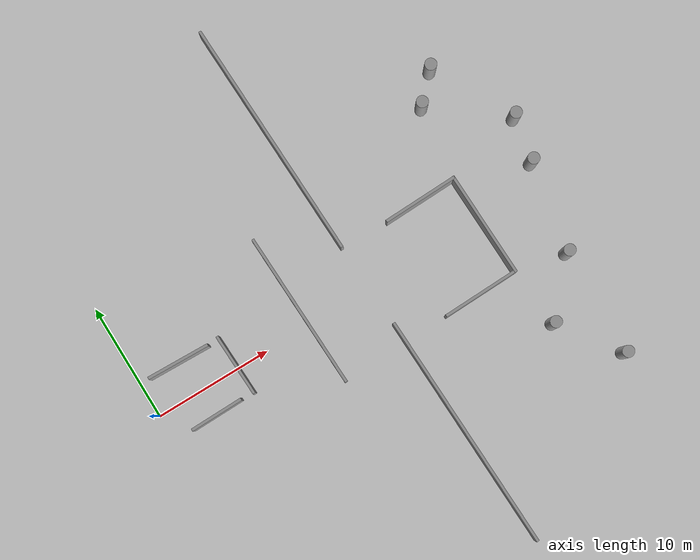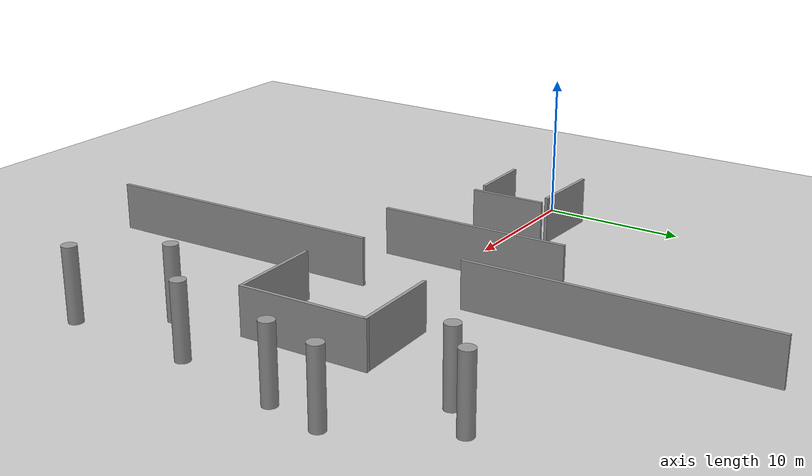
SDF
<sdf version="1.6">
 <world name="default">
  <model name="ground_plane">
   <static>1</static>
   <link name="link">
    <collision name="collision">
     <geometry><plane><normal>0 0 1</normal><size>200 200</size></plane></geometry>
     <surface><friction><ode><mu>100</mu><mu2>50</mu2></ode></friction></surface>
    </collision>
    <visual name="visual">
     <cast_shadows>0</cast_shadows>
     <geometry><plane><normal>0 0 1</normal><size>200 200</size></plane></geometry>
     <material>
      <script><uri>file://media/materials/scripts/gazebo.material</uri><name>Gazebo/Grey</name></script>
     </material>
    </visual>
    <gravity>0</gravity>
   </link>
  </model>
  <model name="unit_box_0_0_clone">
   <pose>3.63656 2.81065 1.66658 0.000226 9e-06 -1.60347</pose>
   <link name="link">
    <inertial>
     <mass>1</mass>
     <inertia>
      <ixx>0.166667</ixx>
      <ixy>0</ixy>
      <ixz>0</ixz>
      <iyy>0.166667</iyy>
      <iyz>0</iyz>
      <izz>0.166667</izz>
     </inertia>
    </inertial>
    <collision name="collision">
     <geometry><box><size>0.237691 5.35848 3.33454</size></box></geometry>
     <surface><contact><collide_without_contact>1</collide_without_contact></contact></surface>
    </collision>
    <visual name="visual">
     <geometry><box><size>0.237691 5.35848 3.33454</size></box></geometry>
     <material>
      <script><name>Gazebo/Grey</name><uri>file://media/materials/scripts/gazebo.material</uri></script>
     </material>
    </visual>
    <gravity>0</gravity>
   </link>
  </model>
  <model name="unit_box_0_0_clone_clone">
   <pose>4.05987 -2.32559 1.66712 6.7e-05 -3e-06 -1.55426</pose>
   <link name="link">
    <inertial>
     <mass>1</mass>
     <inertia>
      <ixx>0.166667</ixx>
      <ixy>0</ixy>
      <ixz>0</ixz>
      <iyy>0.166667</iyy>
      <iyz>0</iyz>
      <izz>0.166667</izz>
     </inertia>
    </inertial>
    <collision name="collision">
     <geometry><box><size>0.237691 4.56821 3.33454</size></box></geometry>
     <surface><contact><collide_without_contact>1</collide_without_contact></contact></surface>
    </collision>
    <visual name="visual">
     <geometry><box><size>0.237691 4.56821 3.33454</size></box></geometry>
     <material>
      <script><name>Gazebo/Grey</name><uri>file://media/materials/scripts/gazebo.material</uri></script>
     </material>
    </visual>
    <gravity>0</gravity>
   </link>
  </model>
  <model name="unit_box_0_0_clone_0">
   <pose>13.8624 1.26709 1.66667 -0.000226 9e-06 0.034068</pose>
   <link name="link">
    <inertial>
     <mass>1</mass>
     <inertia>
      <ixx>0.166667</ixx>
      <ixy>0</ixy>
      <ixz>0</ixz>
      <iyy>0.166667</iyy>
      <iyz>0</iyz>
      <izz>0.166667</izz>
     </inertia>
    </inertial>
    <collision name="collision">
     <geometry><box><size>0.237691 13.4329 3.33454</size></box></geometry>
     <surface><contact><collide_without_contact>1</collide_without_contact></contact></surface>
    </collision>
    <visual name="visual">
     <geometry><box><size>0.237691 13.4329 3.33454</size></box></geometry>
     <material>
      <script><name>Gazebo/Grey</name><uri>file://media/materials/scripts/gazebo.material</uri></script>
     </material>
    </visual>
    <gravity>0</gravity>
   </link>
  </model>
  <model name="unit_cylinder_0_clone">
   <pose>35.7138 1.81409 1.99265 0 -0 0.001048</pose>
   <link name="link">
    <inertial>
     <mass>1</mass>
     <inertia><ixx>0.145833</ixx><ixy>0</ixy><ixz>0</ixz><iyy>0.145833</iyy><iyz>0</iyz><izz>0.125</izz></inertia>
    </inertial>
    <collision name="collision">
     <geometry><cylinder><radius>0.5</radius><length>6.03342</length></cylinder></geometry>
     <surface><contact><collide_without_contact>1</collide_without_contact></contact></surface>
    </collision>
    <visual name="visual">
     <geometry><cylinder><radius>0.5</radius><length>6.03342</length></cylinder></geometry>
     <material>
      <script><name>Gazebo/Grey</name><uri>file://media/materials/scripts/gazebo.material</uri></script>
     </material>
    </visual>
    <gravity>0</gravity>
   </link>
  </model>
  <model name="unit_cylinder_0_clone_0">
   <pose>34.333 -5.78751 1.99265 0 -0 0.00102</pose>
   <link name="link">
    <inertial>
     <mass>1</mass>
     <inertia><ixx>0.145833</ixx><ixy>0</ixy><ixz>0</ixz><iyy>0.145833</iyy><iyz>0</iyz><izz>0.125</izz></inertia>
    </inertial>
    <collision name="collision">
     <geometry><cylinder><radius>0.5</radius><length>6.03342</length></cylinder></geometry>
     <surface><contact><collide_without_contact>1</collide_without_contact></contact></surface>
    </collision>
    <visual name="visual">
     <geometry><cylinder><radius>0.5</radius><length>6.03342</length></cylinder></geometry>
     <material>
      <script><name>Gazebo/Grey</name><uri>file://media/materials/scripts/gazebo.material</uri></script>
     </material>
    </visual>
    <gravity>0</gravity>
   </link>
  </model>
  <model name="unit_cylinder_0_clone_1">
   <pose>36.4256 5.60163 1.99265 0 -0 0.001071</pose>
   <link name="link">
    <inertial>
     <mass>1</mass>
     <inertia><ixx>0.145833</ixx><ixy>0</ixy><ixz>0</ixz><iyy>0.145833</iyy><iyz>0</iyz><izz>0.125</izz></inertia>
    </inertial>
    <collision name="collision">
     <geometry><cylinder><radius>0.5</radius><length>6.03342</length></cylinder></geometry>
     <surface><contact><collide_without_contact>1</collide_without_contact></contact></surface>
    </collision>
    <visual name="visual">
     <geometry><cylinder><radius>0.5</radius><length>6.03342</length></cylinder></geometry>
     <material>
      <script><name>Gazebo/Grey</name><uri>file://media/materials/scripts/gazebo.material</uri></script>
     </material>
    </visual>
    <gravity>0</gravity>
   </link>
  </model>
  <model name="unit_cylinder_0_clone_12">
   <pose>32.6996 12.3147 1.99265 0 -0 0.000949</pose>
   <link name="link">
    <inertial>
     <mass>1</mass>
     <inertia><ixx>0.145833</ixx><ixy>0</ixy><ixz>0</ixz><iyy>0.145833</iyy><iyz>0</iyz><izz>0.125</izz></inertia>
    </inertial>
    <collision name="collision">
     <geometry><cylinder><radius>0.5</radius><length>6.03342</length></cylinder></geometry>
     <surface><contact><collide_without_contact>1</collide_without_contact></contact></surface>
    </collision>
    <visual name="visual">
     <geometry><cylinder><radius>0.5</radius><length>6.03342</length></cylinder></geometry>
     <material>
      <script><name>Gazebo/Grey</name><uri>file://media/materials/scripts/gazebo.material</uri></script>
     </material>
    </visual>
    <gravity>0</gravity>
   </link>
  </model>
  <model name="unit_cylinder_0_clone_13">
   <pose>30.5886 10.1395 1.99265 0 -0 0.000936</pose>
   <link name="link">
    <inertial>
     <mass>1</mass>
     <inertia><ixx>0.145833</ixx><ixy>0</ixy><ixz>0</ixz><iyy>0.145833</iyy><iyz>0</iyz><izz>0.125</izz></inertia>
    </inertial>
    <collision name="collision">
     <geometry><cylinder><radius>0.5</radius><length>6.03342</length></cylinder></geometry>
     <surface><contact><collide_without_contact>1</collide_without_contact></contact></surface>
    </collision>
    <visual name="visual">
     <geometry><cylinder><radius>0.5</radius><length>6.03342</length></cylinder></geometry>
     <material>
      <script><name>Gazebo/Grey</name><uri>file://media/materials/scripts/gazebo.material</uri></script>
     </material>
    </visual>
    <gravity>0</gravity>
   </link>
  </model>
  <model name="unit_cylinder_0_clone_14">
   <pose>30.4731 -9.99792 1.99266 0 -0 0.001073</pose>
   <link name="link">
    <inertial>
     <mass>1</mass>
     <inertia><ixx>0.145833</ixx><ixy>0</ixy><ixz>0</ixz><iyy>0.145833</iyy><iyz>0</iyz><izz>0.125</izz></inertia>
    </inertial>
    <collision name="collision">
     <geometry><cylinder><radius>0.5</radius><length>6.03342</length></cylinder></geometry>
     <surface><contact><collide_without_contact>1</collide_without_contact></contact></surface>
    </collision>
    <visual name="visual">
     <geometry><cylinder><radius>0.5</radius><length>6.03342</length></cylinder></geometry>
     <material>
      <script><name>Gazebo/Grey</name><uri>file://media/materials/scripts/gazebo.material</uri></script>
     </material>
    </visual>
    <gravity>0</gravity>
   </link>
  </model>
  <model name="unit_cylinder_0_clone_18">
   <pose>34.0571 -14.8992 1.99266 0 -0 0.001025</pose>
   <link name="link">
    <inertial>
     <mass>1</mass>
     <inertia><ixx>0.145833</ixx><ixy>0</ixy><ixz>0</ixz><iyy>0.145833</iyy><iyz>0</iyz><izz>0.125</izz></inertia>
    </inertial>
    <collision name="collision">
     <geometry><cylinder><radius>0.5</radius><length>6.03342</length></cylinder></geometry>
     <surface><contact><collide_without_contact>1</collide_without_contact></contact></surface>
    </collision>
    <visual name="visual">
     <geometry><cylinder><radius>0.5</radius><length>6.03342</length></cylinder></geometry>
     <material>
      <script><name>Gazebo/Grey</name><uri>file://media/materials/scripts/gazebo.material</uri></script>
     </material>
    </visual>
    <gravity>0</gravity>
   </link>
  </model>
  <model name="unit_box_0_0_clone_0_clone">
   <pose>18.9776 14.0221 1.66667 -0.000226 9e-06 0.034061</pose>
   <link name="link">
    <inertial>
     <mass>1</mass>
     <inertia>
      <ixx>0.166667</ixx>
      <ixy>0</ixy>
      <ixz>0</ixz>
      <iyy>0.166667</iyy>
      <iyz>0</iyz>
      <izz>0.166667</izz>
     </inertia>
    </inertial>
    <collision name="collision">
     <geometry><box><size>0.237691 20.4927 3.33454</size></box></geometry>
     <surface><contact><collide_without_contact>1</collide_without_contact></contact></surface>
    </collision>
    <visual name="visual">
     <geometry><box><size>0.237691 20.4927 3.33454</size></box></geometry>
     <material>
      <script><name>Gazebo/Grey</name><uri>file://media/materials/scripts/gazebo.material</uri></script>
     </material>
    </visual>
    <gravity>0</gravity>
   </link>
  </model>
  <model name="unit_box_0_0_clone_0_clone_clone">
   <pose>20.034 -13.669 1.66667 -0.000226 9e-06 0.034061</pose>
   <link name="link">
    <inertial>
     <mass>1</mass>
     <inertia>
      <ixx>0.166667</ixx>
      <ixy>0</ixy>
      <ixz>0</ixz>
      <iyy>0.166667</iyy>
      <iyz>0</iyz>
      <izz>0.166667</izz>
     </inertia>
    </inertial>
    <collision name="collision">
     <geometry><box><size>0.237691 20.4927 3.33454</size></box></geometry>
     <surface><contact><collide_without_contact>1</collide_without_contact></contact></surface>
    </collision>
    <visual name="visual">
     <geometry><box><size>0.237691 20.4927 3.33454</size></box></geometry>
     <material>
      <script><name>Gazebo/Grey</name><uri>file://media/materials/scripts/gazebo.material</uri></script>
     </material>
    </visual>
    <gravity>0</gravity>
   </link>
  </model>
  <model name="unit_box_0_0_clone_0_clone_0">
   <pose>7.35282 0.223514 1.66667 -0.000226 9e-06 0.034061</pose>
   <link name="link">
    <inertial>
     <mass>1</mass>
     <inertia>
      <ixx>0.166667</ixx>
      <ixy>0</ixy>
      <ixz>0</ixz>
      <iyy>0.166667</iyy>
      <iyz>0</iyz>
      <izz>0.166667</izz>
     </inertia>
    </inertial>
    <collision name="collision">
     <geometry><box><size>0.237691 5.35848 3.33454</size></box></geometry>
     <surface><contact><collide_without_contact>1</collide_without_contact></contact></surface>
    </collision>
    <visual name="visual">
     <geometry><box><size>0.237691 5.35848 3.33454</size></box></geometry>
     <material>
      <script><name>Gazebo/Grey</name><uri>file://media/materials/scripts/gazebo.material</uri></script>
     </material>
    </visual>
    <gravity>0</gravity>
   </link>
  </model>
  <model name="unit_box_0_0_clone_0_clone_clone_0">
   <pose>26.5741 3.7947 1.66667 8e-06 0.000226 1.60099</pose>
   <link name="link">
    <inertial>
     <mass>1</mass>
     <inertia>
      <ixx>0.166667</ixx>
      <ixy>0</ixy>
      <ixz>0</ixz>
      <iyy>0.166667</iyy>
      <iyz>0</iyz>
      <izz>0.166667</izz>
     </inertia>
    </inertial>
    <collision name="collision">
     <geometry><box><size>0.237691 6.40291 3.33454</size></box></geometry>
     <surface><contact><collide_without_contact>1</collide_without_contact></contact></surface>
    </collision>
    <visual name="visual">
     <geometry><box><size>0.237691 6.40291 3.33454</size></box></geometry>
     <material>
      <script><name>Gazebo/Grey</name><uri>file://media/materials/scripts/gazebo.material</uri></script>
     </material>
    </visual>
    <gravity>0</gravity>
   </link>
  </model>
  <model name="unit_box_0_0_clone_0_clone_clone_0_clone">
   <pose>29.8508 -0.508676 1.66667 -0.000226 9e-06 0.034061</pose>
   <link name="link">
    <inertial>
     <mass>1</mass>
     <inertia>
      <ixx>0.166667</ixx>
      <ixy>0</ixy>
      <ixz>0</ixz>
      <iyy>0.166667</iyy>
      <iyz>0</iyz>
      <izz>0.166667</izz>
     </inertia>
    </inertial>
    <collision name="collision">
     <geometry><box><size>0.237691 9.07344 3.33454</size></box></geometry>
     <surface><contact><collide_without_contact>1</collide_without_contact></contact></surface>
    </collision>
    <visual name="visual">
     <geometry><box><size>0.237691 9.07344 3.33454</size></box></geometry>
     <material>
      <script><name>Gazebo/Grey</name><uri>file://media/materials/scripts/gazebo.material</uri></script>
     </material>
    </visual>
    <gravity>0</gravity>
   </link>
  </model>
  <model name="unit_box_0_0_clone_0_clone_clone_0_clone_0">
   <pose>26.6881 -5.02762 1.66667 8e-06 0.000226 1.60099</pose>
   <link name="link">
    <inertial>
     <mass>1</mass>
     <inertia>
      <ixx>0.166667</ixx>
      <ixy>0</ixy>
      <ixz>0</ixz>
      <iyy>0.166667</iyy>
      <iyz>0</iyz>
      <izz>0.166667</izz>
     </inertia>
    </inertial>
    <collision name="collision">
     <geometry><box><size>0.237691 6.4029 3.33454</size></box></geometry>
     <surface><contact><collide_without_contact>1</collide_without_contact></contact></surface>
    </collision>
    <visual name="visual">
     <geometry><box><size>0.237691 6.4029 3.33454</size></box></geometry>
     <material>
      <script><name>Gazebo/Grey</name><uri>file://media/materials/scripts/gazebo.material</uri></script>
     </material>
    </visual>
    <gravity>0</gravity>
   </link>
  </model>
 </world>
</sdf>
